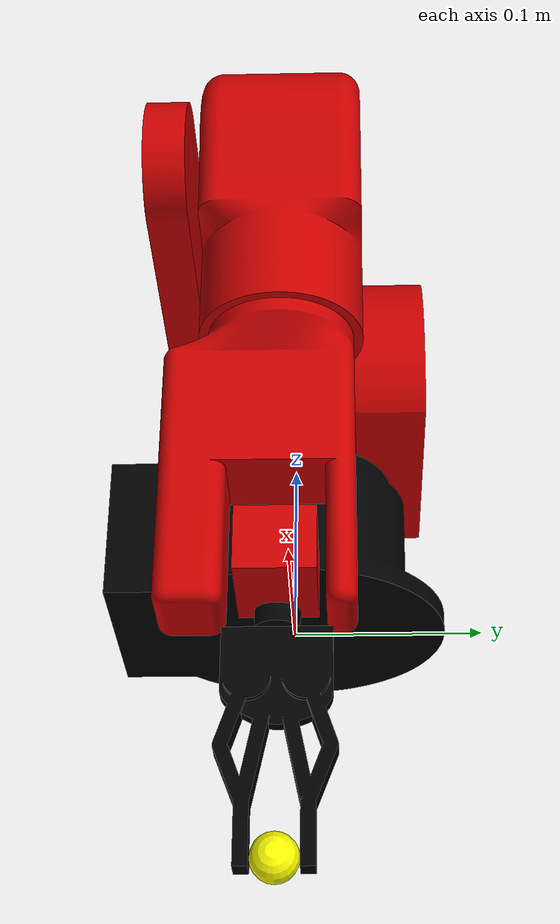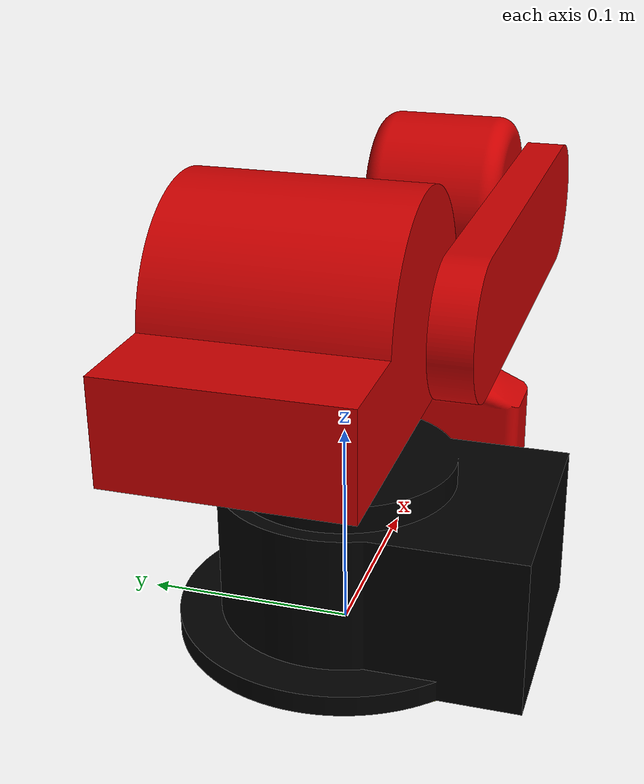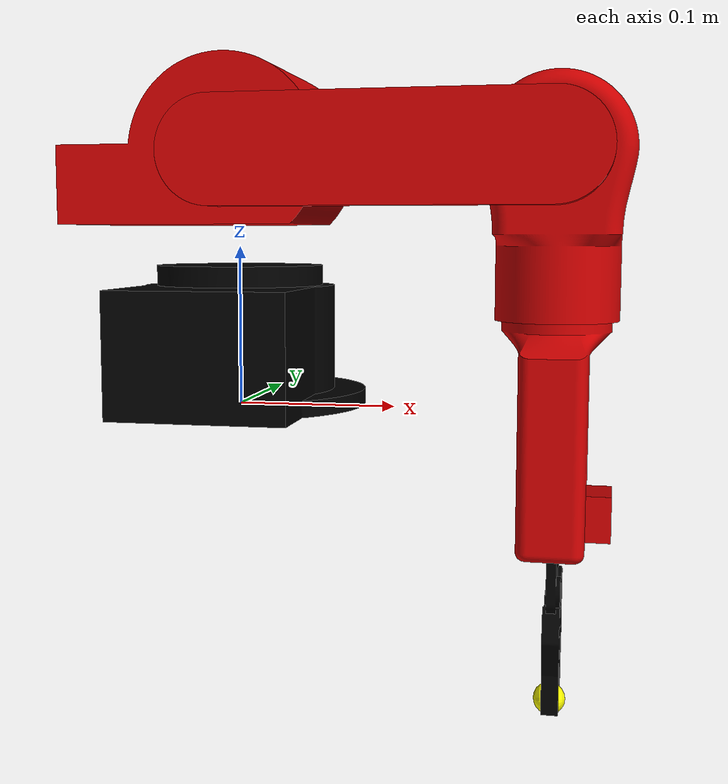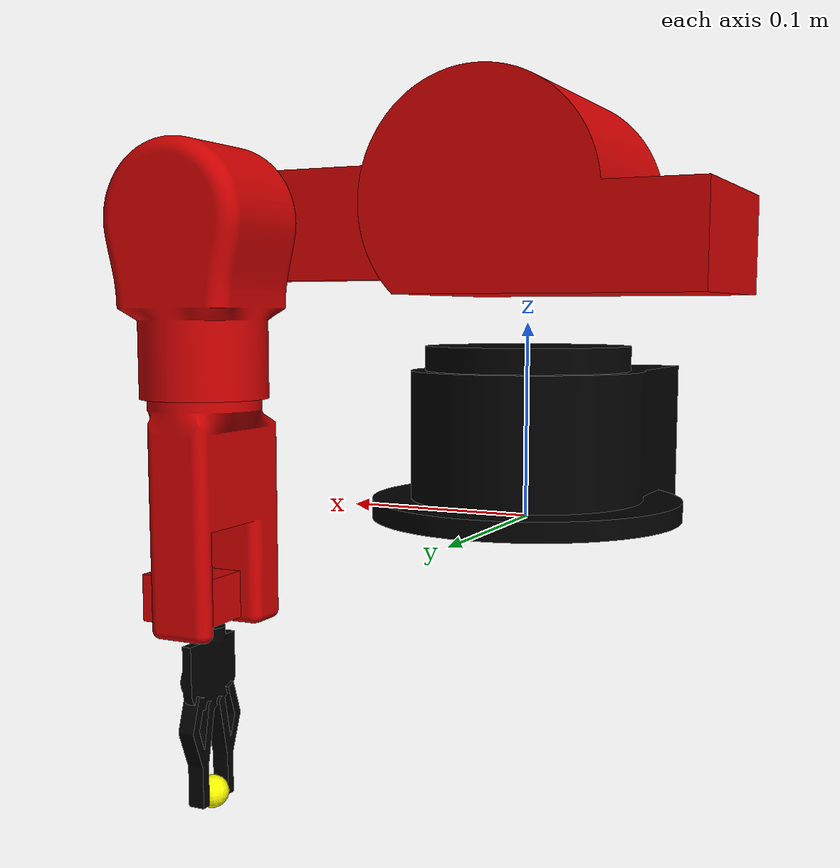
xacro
<?xml version="1.0"?>
<robot xmlns:xacro="http://www.ros.org/wiki/xacro" name="fred">

  <!-- link lengths in metres, see src/robot_config.yaml -->
  <xacro:arg name="d1" default="0.157"/>   <!-- ground to the shoulder axis -->
  <xacro:arg name="a2" default="0.2"/>     <!-- shoulder to elbow -->
  <xacro:arg name="d4" default="0.22"/>    <!-- elbow to the wrist centre -->
  <xacro:arg name="d6" default="0.12"/>    <!-- wrist centre to the tip of the gripper -->
  <xacro:arg name="spheres" default="true"/>  <!-- add the control point spheres -->

  <xacro:property name="d1" value="$(arg d1)"/>
  <xacro:property name="a2" value="$(arg a2)"/>
  <xacro:property name="d4" value="$(arg d4)"/>
  <xacro:property name="d6" value="$(arg d6)"/>
  <xacro:property name="M_PI" value="3.14159265359"/>

  <!-- offsets that follow from the printed parts, not from the kinematics -->
  <xacro:property name="shoulder_offset" value="0.04"/>     <!-- the shoulder axis is beside the base axis, undone at the elbow -->
  <xacro:property name="wrist_roll_offset" value="0.101"/>  <!-- the roll joint sits this far up the upper arm -->
  <xacro:property name="gripper_offset" value="0.017"/>     <!-- the gripper roll joint beyond the wrist centre -->
  <xacro:property name="sphere1_offset" value="0.05"/>      <!-- control point 1 along the upper arm, from the roll joint -->

  <material name="black">
    <color rgba="0 0 0 1"/>
  </material>
  <material name="white">
    <color rgba="1 1 1 1"/>
  </material>
  <material name="red">
    <color rgba="0.8 0 0 1"/>
  </material>
  <material name="yellow">
    <color rgba="1 1 0 1"/>
  </material>

  <xacro:macro name="mesh_link" params="name mesh mass com ixx iyy izz material collision:=true">
    <link name="${name}">
      <inertial>
        <mass value="${mass}"/>
        <origin rpy="0 0 0" xyz="${com}"/>
        <inertia ixx="${ixx}" iyy="${iyy}" izz="${izz}" ixy="0" ixz="0" iyz="0"/>
      </inertial>
      <visual>
        <origin rpy="0 0 0" xyz="0 0 0"/>
        <geometry>
          <mesh filename="meshes/${mesh}" scale="0.001 0.001 0.001"/>
        </geometry>
        <material name="${material}"/>
      </visual>
      <xacro:if value="${collision}">
        <collision>
          <origin rpy="0 0 0" xyz="0 0 0"/>
          <geometry>
            <mesh filename="meshes/${mesh}" scale="0.001 0.001 0.001"/>
          </geometry>
        </collision>
      </xacro:if>
    </link>
  </xacro:macro>

  <xacro:macro name="sphere_link" params="name parent xyz collision_radius:=0.01">
    <link name="${name}">
      <inertial>
        <origin rpy="0 0 0" xyz="0 0 0"/>
        <mass value=".0"/>
        <inertia ixx="0" ixy="0" ixz="0" iyy="0" iyz="0" izz="0"/>
      </inertial>
      <visual>
        <origin rpy="0 0 0" xyz="0 0 0"/>
        <geometry>
          <sphere radius="0.01"/>
        </geometry>
        <material name="yellow"/>
      </visual>
      <collision>
        <origin rpy="0 0 0" xyz="0 0 0"/>
        <geometry>
          <sphere radius="${collision_radius}"/>
        </geometry>
      </collision>
    </link>
    <joint name="${parent}_to_${name}" type="continuous">
      <parent link="${parent}"/>
      <child link="${name}"/>
      <origin xyz="${xyz}"/>
      <axis xyz="0 1 0"/>
    </joint>
  </xacro:macro>

  <link name="base_link">
    <inertial>
      <origin rpy="0 0 0" xyz="0 0 0"/>
      <mass value=".0"/>
      <inertia ixx="0" ixy="0" ixz="0" iyy="0" iyz="0" izz="0"/>
    </inertial>
    <visual>
      <origin rpy="0 0 0" xyz="0 0 0"/>
      <geometry>
        <mesh filename="meshes/base.stl" scale="0.001 0.001 0.001"/>
      </geometry>
      <material name="black"/>
    </visual>
  </link>

  <!-- joint 1: the base plate turns on top of the base, its axis is the base axis -->
  <xacro:mesh_link name="base_plate" mesh="joint2.stl" mass="0.05" com="0 0 0"
                   ixx="1e-05" iyy="1e-05" izz="1e-05" material="red" collision="false"/>
  <joint name="base_to_base_plate" type="revolute">
    <limit effort="1000.0" lower="0.0" upper="${M_PI}" velocity="10"/>
    <parent link="base_link"/>
    <child link="base_plate"/>
    <origin rpy="0 0 -${M_PI/2}" xyz="0 0 ${d1}"/>
    <axis xyz="0 0 1"/>
  </joint>

  <!-- joint 2: the shoulder, its axis lies at height d1 beside the base axis -->
  <xacro:mesh_link name="arm_lower" mesh="arm.stl" mass="0.2" com="0 0.09 0.0"
                   ixx="0.0006" iyy="0.00012" izz="0.0006" material="red"/>
  <joint name="base_plate_to_arm_lower" type="revolute">
    <limit effort="1000.0" lower="-${M_PI}" upper="${M_PI}" velocity="10"/>
    <parent link="base_plate"/>
    <child link="arm_lower"/>
    <origin rpy="-${M_PI/2} 0 0" xyz="${shoulder_offset} 0 0"/>
    <axis xyz="1 0 0"/>
  </joint>

  <!-- joint 3: the elbow, a2 along the lower arm and back on the base axis -->
  <xacro:mesh_link name="arm_upper" mesh="joint3.stl" mass="0.3" com="0.0 0.03 -0.01"
                   ixx="0.00045" iyy="0.00013" izz="0.0004" material="red"/>
  <joint name="arm_lower_to_arm_upper" type="revolute">
    <limit effort="1000.0" lower="${-M_PI/2}" upper="${M_PI}" velocity="10"/>
    <parent link="arm_lower"/>
    <child link="arm_upper"/>
    <origin rpy="0 0 0" xyz="-${shoulder_offset} 0 ${a2}"/>
    <axis xyz="1 0 0"/>
  </joint>

  <!-- joint 4: the wrist roll, part way up the upper arm -->
  <xacro:mesh_link name="wrist" mesh="joint4.stl" mass="0.1" com="0 0 0.0"
                   ixx="0.000133333333333" iyy="5.41666666667e-05" izz="0.000160833333333" material="red"/>
  <joint name="arm_upper_to_wrist" type="continuous">
    <parent link="arm_upper"/>
    <child link="wrist"/>
    <origin xyz="0 ${wrist_roll_offset} 0"/>
    <axis xyz="0 1 0"/>
  </joint>

  <!-- joint 5: the wrist pitch, d4 from the elbow: the wrist centre of the kinematics -->
  <link name="wrist_servo">
    <inertial>
      <mass value="0.04"/>
      <origin rpy="0 0 0" xyz="0.0 0.0 0.0"/>
      <inertia ixx="0.00030675" ixy="0" ixz="0" iyy="9.75e-06" iyz="0" izz="0.000303"/>
    </inertial>
    <visual>
      <origin rpy="0 0 ${M_PI/2}" xyz="0 0 0"/>
      <geometry>
        <mesh filename="meshes/gripper_servo.stl" scale="0.001 0.001 0.001"/>
      </geometry>
      <material name="red"/>
    </visual>
    <collision>
      <origin rpy="0 0 0" xyz="0 0 0"/>
      <geometry>
        <mesh filename="meshes/gripper_servo.stl" scale="0.001 0.001 0.001"/>
      </geometry>
    </collision>
  </link>
  <joint name="wrist_to_wrist_servo" type="continuous">
    <parent link="wrist"/>
    <child link="wrist_servo"/>
    <origin xyz="0 ${d4 - wrist_roll_offset} 0"/>
    <axis xyz="1 0 0"/>
  </joint>

  <!-- joint 6: the gripper roll -->
  <xacro:mesh_link name="gripper" mesh="gripper.stl" mass="0.01" com="0 0 0"
                   ixx="5.4375e-06" iyy="3.75e-06" izz="7.6875e-06" material="black"/>
  <joint name="wrist_servo_to_gripper" type="continuous">
    <parent link="wrist_servo"/>
    <child link="gripper"/>
    <origin xyz="0 ${gripper_offset} 0"/>
    <axis xyz="0 1 0"/>
  </joint>

  <!-- the control points of the obstacle avoidance: on the upper arm, at the wrist centre and at the tip -->
  <xacro:if value="$(arg spheres)">
    <xacro:sphere_link name="sphere1" parent="wrist" xyz="0 ${sphere1_offset} 0"/>
    <xacro:sphere_link name="sphere2" parent="wrist_servo" xyz="0 0 0"/>
    <xacro:sphere_link name="sphere3" parent="gripper" xyz="0 ${d6 - gripper_offset} 0" collision_radius="0.005"/>
  </xacro:if>

</robot>
